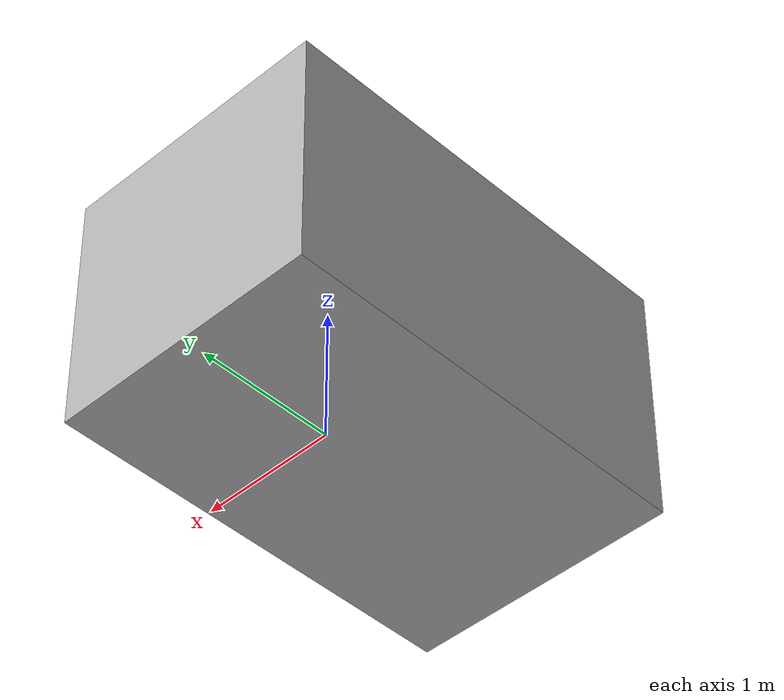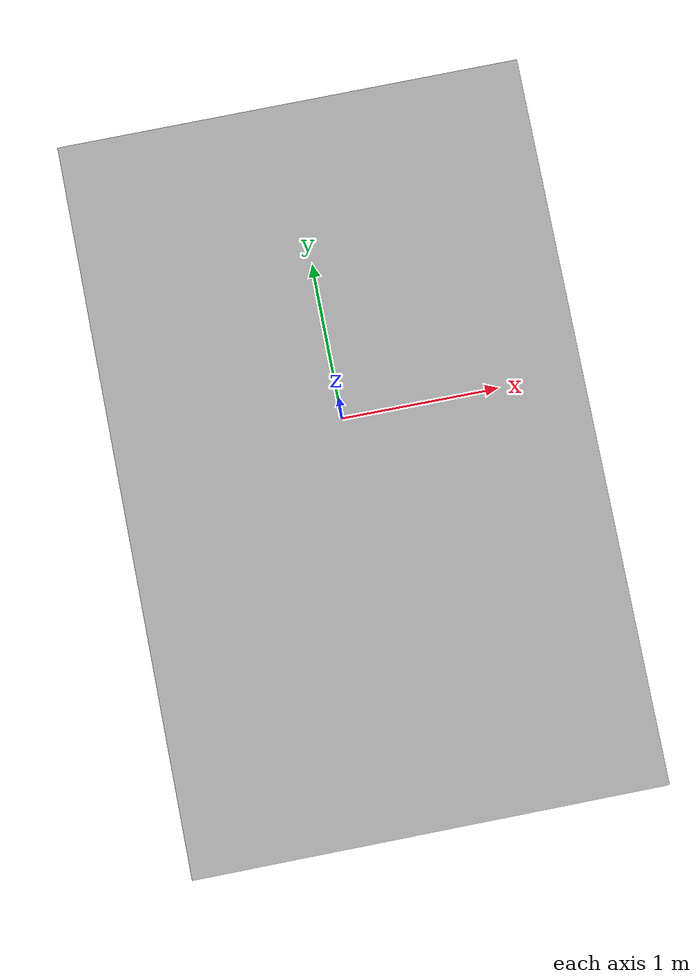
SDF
<?xml version="1.0"?>
<sdf version="1.4">
    <model name="docking_station">
        <pose>0 0 0 0 0 0</pose>
        <static>true</static>
        <link name="docking_station_body">
            <visual name="visual">
                <geometry>
                    <mesh>
                        <uri>model://docking_station/visual.osgb</uri>
                    </mesh>
                </geometry>
            </visual>
            <collision name="collision">
                <geometry>
                    <mesh>
                        <uri>model://docking_station/collision.stl</uri>
                    </mesh>
                </geometry>
            </collision>
            <inertial>
                <pose>0 0 -1 0 0 0</pose>
                <inertia>
                    <ixx>0.0</ixx>
                    <ixy>0</ixy>
                    <ixz>0.0</ixz>
                    <iyy>0.0</iyy>
                    <iyz>0</iyz>
                    <izz>0.0</izz>
                </inertia>
                <mass>1.0</mass>
            </inertial>
        </link>
    </model>
</sdf>
